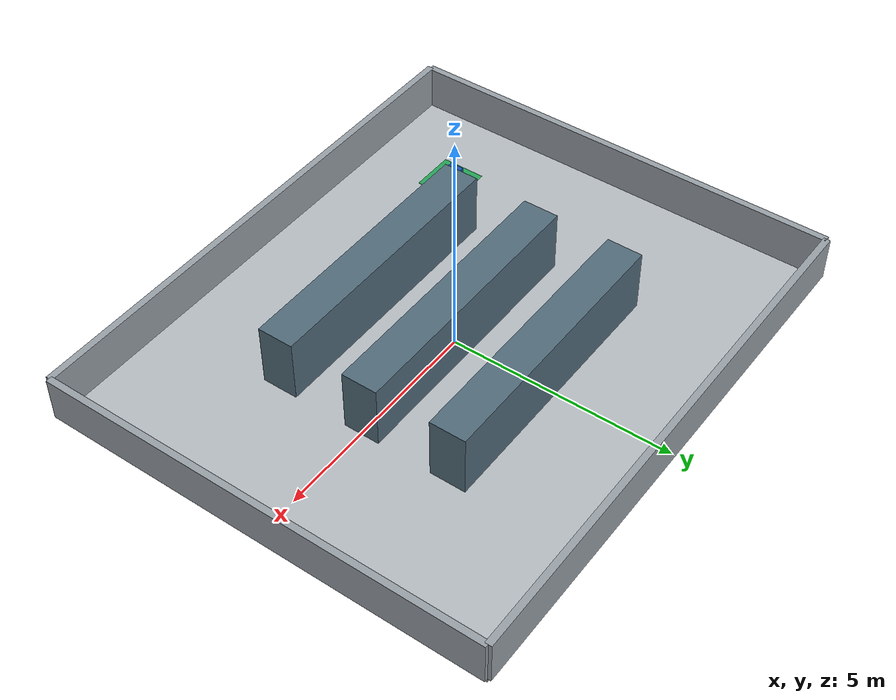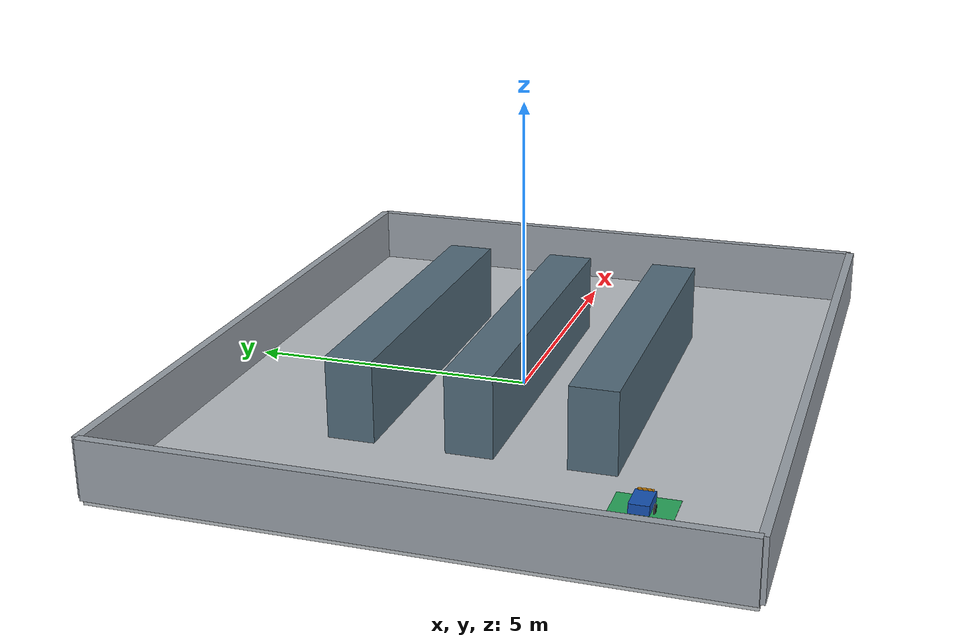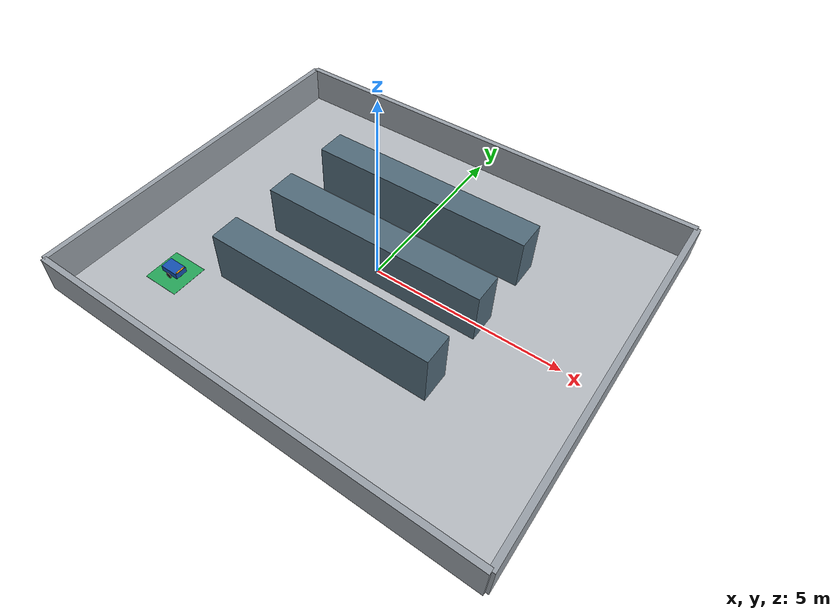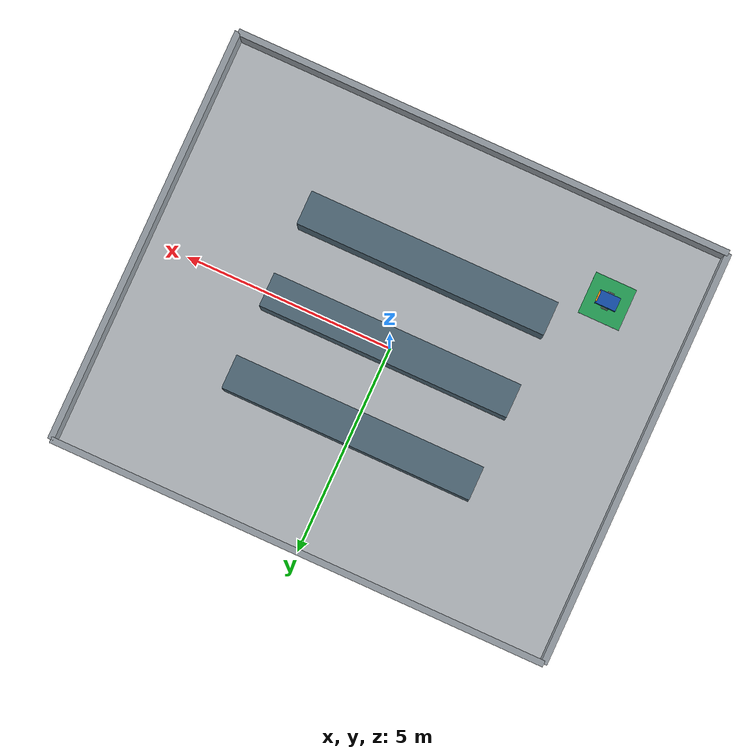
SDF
<?xml version="1.0"?>
<sdf version="1.8">
  <world name="warehouse">
    <gravity>0 0 -9.81</gravity>
    <physics name="warehouse_physics" type="ignored">
      <max_step_size>0.001</max_step_size>
      <real_time_factor>1.0</real_time_factor>
    </physics>
    <plugin filename="libignition-gazebo-physics-system.so" name="ignition::gazebo::systems::Physics"/>
    <plugin filename="libignition-gazebo-user-commands-system.so" name="ignition::gazebo::systems::UserCommands"/>
    <plugin filename="libignition-gazebo-scene-broadcaster-system.so" name="ignition::gazebo::systems::SceneBroadcaster"/>
    <light name="sun" type="directional">
      <pose>0 0 10 0 0 0</pose>
      <cast_shadows>true</cast_shadows>
      <diffuse>0.9 0.9 0.9 1</diffuse><specular>0.2 0.2 0.2 1</specular>
      <direction>-0.4 -0.3 -1</direction>
      <attenuation><range>1000</range><constant>1</constant><linear>0</linear><quadratic>0</quadratic></attenuation>
    </light>
    <model name="floor">
      <static>true</static><pose>0 0 -0.05 0 0 0</pose>
      <link name="body">
        <collision name="collision"><geometry><box><size>12 10 0.1</size></box></geometry></collision>
        <visual name="visual">
          <geometry><box><size>12 10 0.1</size></box></geometry>
          <material><ambient>0.72 0.74 0.76 1</ambient><diffuse>0.72 0.74 0.76 1</diffuse></material>
        </visual>
      </link>
    </model>
    <model name="shelf_row_1">
      <static>true</static><pose>0 -2 0.7 0 0 0</pose>
      <link name="body">
        <collision name="collision"><geometry><box><size>6 0.8 1.4</size></box></geometry></collision>
        <visual name="visual">
          <geometry><box><size>6 0.8 1.4</size></box></geometry>
          <material><ambient>0.32 0.42 0.48 1</ambient><diffuse>0.32 0.42 0.48 1</diffuse></material>
        </visual>
      </link>
    </model>
    <model name="shelf_row_2">
      <static>true</static><pose>0 0 0.7 0 0 0</pose>
      <link name="body">
        <collision name="collision"><geometry><box><size>6 0.8 1.4</size></box></geometry></collision>
        <visual name="visual">
          <geometry><box><size>6 0.8 1.4</size></box></geometry>
          <material><ambient>0.32 0.42 0.48 1</ambient><diffuse>0.32 0.42 0.48 1</diffuse></material>
        </visual>
      </link>
    </model>
    <model name="shelf_row_3">
      <static>true</static><pose>0 2 0.7 0 0 0</pose>
      <link name="body">
        <collision name="collision"><geometry><box><size>6 0.8 1.4</size></box></geometry></collision>
        <visual name="visual">
          <geometry><box><size>6 0.8 1.4</size></box></geometry>
          <material><ambient>0.32 0.42 0.48 1</ambient><diffuse>0.32 0.42 0.48 1</diffuse></material>
        </visual>
      </link>
    </model>
    <model name="north_wall">
      <static>true</static><pose>0 5 0.5 0 0 0</pose>
      <link name="body">
        <collision name="collision"><geometry><box><size>12 0.15 1</size></box></geometry></collision>
        <visual name="visual">
          <geometry><box><size>12 0.15 1</size></box></geometry>
          <material><ambient>0.6 0.63 0.66 1</ambient><diffuse>0.6 0.63 0.66 1</diffuse></material>
        </visual>
      </link>
    </model>
    <model name="south_wall">
      <static>true</static><pose>0 -5 0.5 0 0 0</pose>
      <link name="body">
        <collision name="collision"><geometry><box><size>12 0.15 1</size></box></geometry></collision>
        <visual name="visual">
          <geometry><box><size>12 0.15 1</size></box></geometry>
          <material><ambient>0.6 0.63 0.66 1</ambient><diffuse>0.6 0.63 0.66 1</diffuse></material>
        </visual>
      </link>
    </model>
    <model name="east_wall">
      <static>true</static><pose>6 0 0.5 0 0 0</pose>
      <link name="body">
        <collision name="collision"><geometry><box><size>0.15 10 1</size></box></geometry></collision>
        <visual name="visual">
          <geometry><box><size>0.15 10 1</size></box></geometry>
          <material><ambient>0.6 0.63 0.66 1</ambient><diffuse>0.6 0.63 0.66 1</diffuse></material>
        </visual>
      </link>
    </model>
    <model name="west_wall">
      <static>true</static><pose>-6 0 0.5 0 0 0</pose>
      <link name="body">
        <collision name="collision"><geometry><box><size>0.15 10 1</size></box></geometry></collision>
        <visual name="visual">
          <geometry><box><size>0.15 10 1</size></box></geometry>
          <material><ambient>0.6 0.63 0.66 1</ambient><diffuse>0.6 0.63 0.66 1</diffuse></material>
        </visual>
      </link>
    </model>
    <model name="depot_marker">
      <static>true</static><pose>-4 -3 0.003 0 0 0</pose>
      <link name="marker">
        <!-- Visual only: the depot marking must not obstruct the wheels. -->
        <visual name="visual">
          <geometry><box><size>1.0 1.0 0.006</size></box></geometry>
          <material><ambient>0.15 0.65 0.35 1</ambient><diffuse>0.15 0.65 0.35 1</diffuse></material>
        </visual>
      </link>
    </model>
    <include>
      <uri>model://warehouse_robot</uri>
      <name>warehouse_robot</name>
      <pose>-4 -3 0 0 0 0</pose>
    </include>
  </world>
</sdf>

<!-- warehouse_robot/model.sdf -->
<sdf version="1.8">
  <model name="warehouse_robot">
    <link name="base_link">
      <pose>0 0 0.16 0 0 0</pose>
      <inertial>
        <mass>4.0</mass>
        <!-- Uniform 0.50 x 0.32 x 0.16 m box: m/12 times squared side sums. -->
        <inertia><ixx>0.042666667</ixx><iyy>0.091866667</iyy><izz>0.117466667</izz></inertia>
      </inertial>
      <collision name="body_collision">
        <geometry><box><size>0.50 0.32 0.16</size></box></geometry>
      </collision>
      <visual name="body_visual">
        <geometry><box><size>0.50 0.32 0.16</size></box></geometry>
        <material><ambient>0.08 0.32 0.70 1</ambient><diffuse>0.08 0.32 0.70 1</diffuse></material>
      </visual>
      <visual name="front_marker">
        <pose>0.24 0 0.09 0 0 0</pose>
        <geometry><box><size>0.035 0.25 0.02</size></box></geometry>
        <material><ambient>1 0.65 0.08 1</ambient><diffuse>1 0.65 0.08 1</diffuse></material>
      </visual>
    </link>
    <link name="left_wheel">
      <pose>0 0.19 0.08 0 0 0</pose>
      <inertial>
        <mass>0.20</mass>
        <!-- Solid cylinder about y: Iyy=m*r^2/2; Ixx=Izz=m*(3*r^2+w^2)/12. -->
        <inertia><ixx>0.000326667</ixx><iyy>0.00064</iyy><izz>0.000326667</izz></inertia>
      </inertial>
      <collision name="wheel_collision">
        <pose>0 0 0 1.570796327 0 0</pose>
        <geometry><cylinder><radius>0.08</radius><length>0.02</length></cylinder></geometry>
        <surface><friction><ode><mu>1.0</mu><mu2>1.0</mu2></ode></friction></surface>
      </collision>
      <visual name="wheel_visual">
        <pose>0 0 0 1.570796327 0 0</pose>
        <geometry><cylinder><radius>0.08</radius><length>0.02</length></cylinder></geometry>
        <material><ambient>0.06 0.06 0.07 1</ambient><diffuse>0.06 0.06 0.07 1</diffuse></material>
      </visual>
    </link>
    <joint name="left_wheel_joint" type="revolute">
      <parent>base_link</parent><child>left_wheel</child>
      <axis><xyz>0 1 0</xyz><limit><lower>-1e16</lower><upper>1e16</upper></limit></axis>
    </joint>
    <link name="right_wheel">
      <pose>0 -0.19 0.08 0 0 0</pose>
      <inertial>
        <mass>0.20</mass>
        <!-- Solid cylinder about y: Iyy=m*r^2/2; Ixx=Izz=m*(3*r^2+w^2)/12. -->
        <inertia><ixx>0.000326667</ixx><iyy>0.00064</iyy><izz>0.000326667</izz></inertia>
      </inertial>
      <collision name="wheel_collision">
        <pose>0 0 0 1.570796327 0 0</pose>
        <geometry><cylinder><radius>0.08</radius><length>0.02</length></cylinder></geometry>
        <surface><friction><ode><mu>1.0</mu><mu2>1.0</mu2></ode></friction></surface>
      </collision>
      <visual name="wheel_visual">
        <pose>0 0 0 1.570796327 0 0</pose>
        <geometry><cylinder><radius>0.08</radius><length>0.02</length></cylinder></geometry>
        <material><ambient>0.06 0.06 0.07 1</ambient><diffuse>0.06 0.06 0.07 1</diffuse></material>
      </visual>
    </link>
    <joint name="right_wheel_joint" type="revolute">
      <parent>base_link</parent><child>right_wheel</child>
      <axis><xyz>0 1 0</xyz><limit><lower>-1e16</lower><upper>1e16</upper></limit></axis>
    </joint>
    <!-- Frictionless spherical support: a simplified caster contact. -->
    <link name="front_support">
      <pose>0.18 0 0.03 0 0 0</pose>
      <inertial>
        <mass>0.05</mass>
        <inertia><ixx>0.000018</ixx><iyy>0.000018</iyy><izz>0.000018</izz></inertia>
      </inertial>
      <collision name="support_collision">
        <geometry><sphere><radius>0.03</radius></sphere></geometry>
        <surface><friction><ode><mu>0</mu><mu2>0</mu2></ode></friction></surface>
      </collision>
      <visual name="support_visual">
        <geometry><sphere><radius>0.03</radius></sphere></geometry>
        <material><ambient>0.35 0.35 0.38 1</ambient><diffuse>0.35 0.35 0.38 1</diffuse></material>
      </visual>
    </link>
    <joint name="front_support_joint" type="fixed">
      <parent>base_link</parent><child>front_support</child>
    </joint>
    <!-- Frictionless spherical support: a simplified caster contact. -->
    <link name="rear_support">
      <pose>-0.18 0 0.03 0 0 0</pose>
      <inertial>
        <mass>0.05</mass>
        <inertia><ixx>0.000018</ixx><iyy>0.000018</iyy><izz>0.000018</izz></inertia>
      </inertial>
      <collision name="support_collision">
        <geometry><sphere><radius>0.03</radius></sphere></geometry>
        <surface><friction><ode><mu>0</mu><mu2>0</mu2></ode></friction></surface>
      </collision>
      <visual name="support_visual">
        <geometry><sphere><radius>0.03</radius></sphere></geometry>
        <material><ambient>0.35 0.35 0.38 1</ambient><diffuse>0.35 0.35 0.38 1</diffuse></material>
      </visual>
    </link>
    <joint name="rear_support_joint" type="fixed">
      <parent>base_link</parent><child>rear_support</child>
    </joint>
    <plugin filename="libignition-gazebo-diff-drive-system.so"
            name="ignition::gazebo::systems::DiffDrive">
      <left_joint>left_wheel_joint</left_joint>
      <right_joint>right_wheel_joint</right_joint>
      <wheel_separation>0.38</wheel_separation>
      <wheel_radius>0.08</wheel_radius>
      <topic>/warehouse/cmd_vel</topic>
      <odom_topic>/warehouse/odom</odom_topic>
      <frame_id>odom</frame_id>
      <child_frame_id>warehouse_robot/base_link</child_frame_id>
      <odom_publish_frequency>20</odom_publish_frequency>
      <max_linear_velocity>0.6</max_linear_velocity>
      <min_linear_velocity>-0.6</min_linear_velocity>
      <max_angular_velocity>1.5</max_angular_velocity>
      <min_angular_velocity>-1.5</min_angular_velocity>
      <max_linear_acceleration>1.5</max_linear_acceleration>
      <min_linear_acceleration>-1.5</min_linear_acceleration>
      <max_angular_acceleration>1.5</max_angular_acceleration>
      <min_angular_acceleration>-1.5</min_angular_acceleration>
    </plugin>
  </model>
</sdf>
